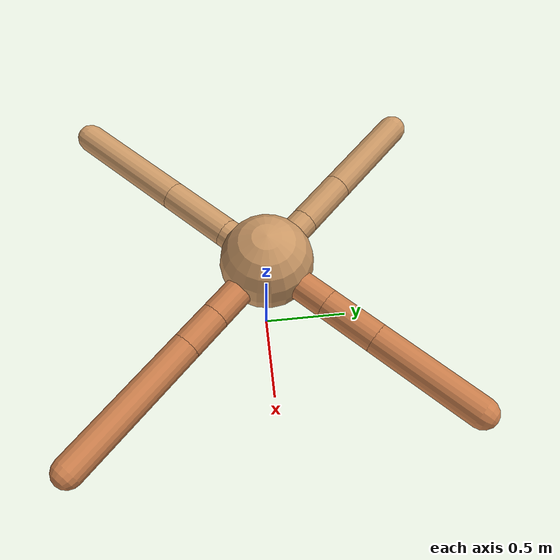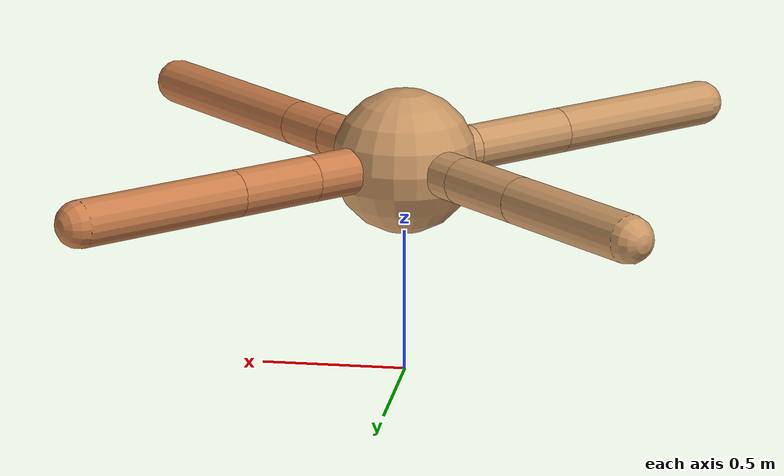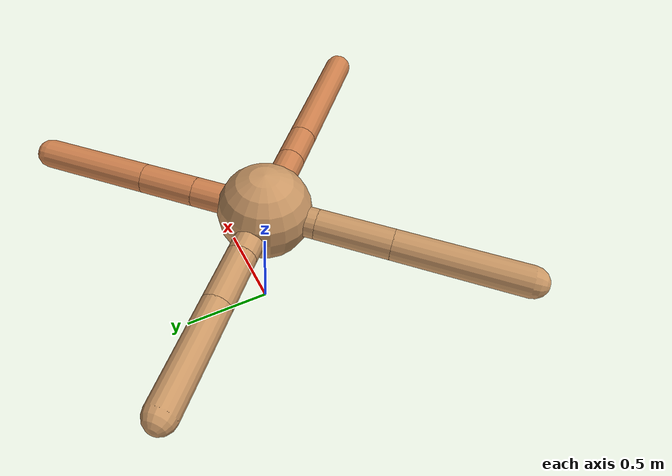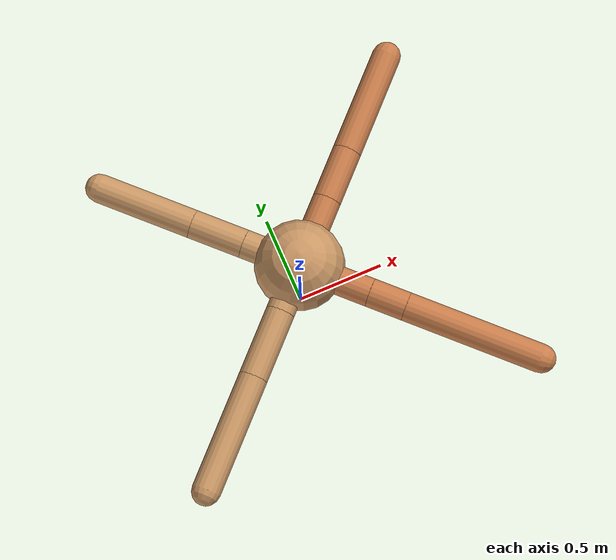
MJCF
<mujoco model="ant">
  <compiler angle="degree" coordinate="local" inertiafromgeom="true" />
  <option integrator="RK4" timestep="0.01" />
  <custom>
    <numeric data="0.0 0.0 0.55 1.0 0.0 0.0 0.0 0.0 1.0 0.0 -1.0 0.0 -1.0 0.0 1.0" name="init_qpos" />
  </custom>
  <default>
    <joint armature="1" damping="1" limited="true" />
    <geom conaffinity="0" condim="3" density="5.0" friction="1.5 0.1 0.1" margin="0.01" rgba="0.8 0.6 0.4 1" />
  </default>
  <worldbody>
    <body name="torso" pos="0 0 0.75">
      <geom name="torso_geom" pos="0 0 0" size="0.25" type="sphere" />

      <body name="front_left_leg" pos="0 0 0">
        <geom fromto="0.0 0.0 0.0 0.28096970651009523 0.28096970651009523 0.0" name="aux_1_geom" size="0.08" type="capsule" rgba=".8 .5 .3 1" />
        <body name="aux_1" pos="0.28096970651009523 0.28096970651009523 0.0">
          <joint axis="0 0 1" name="hip_1" pos="0.0 0.0 0.0" range="-40 40" type="hinge" />
          <geom fromto="0.0 0.0 0.0 0.2129304381275382 0.2129304381275382 0.0" name="left_leg_geom" size="0.08" type="capsule" rgba=".8 .5 .3 1" />
          <body pos="0.2129304381275382 0.2129304381275382 0.0" name="front_left_foot">
            <joint axis="-1 1 0" name="ankle_1" pos="0.0 0.0 0.0" range="30 100" type="hinge" />
            <geom fromto="0.0 0.0 0.0 0.42392827731381566 0.42392827731381566 0.0" name="left_ankle_geom" size="0.08" type="capsule" rgba=".8 .5 .3 1" />
          </body>
        </body>
      </body>
      <body name="front_right_leg" pos="0 0 0">
        <geom fromto="0.0 0.0 0.0 -0.23119941878769287 0.23119941878769287 0.0" name="aux_2_geom" size="0.08" type="capsule" />
        <body name="aux_2" pos="-0.23119941878769287 0.23119941878769287 0.0">
          <joint axis="0 0 1" name="hip_2" pos="0.0 0.0 0.0" range="-40 40" type="hinge" />
          <geom fromto="0.0 0.0 0.0 -0.2140722861741549 0.2140722861741549 0.0" name="right_leg_geom" size="0.08" type="capsule" />
          <body pos="-0.2140722861741549 0.2140722861741549 0.0" name="front_right_foot">
            <joint axis="1 1 0" name="ankle_2" pos="0.0 0.0 0.0" range="-100 -30" type="hinge" />
            <geom fromto="0.0 0.0 0.0 -0.3909747192425257 0.3909747192425257 0.0" name="right_ankle_geom" size="0.08" type="capsule" />
          </body>
        </body>
      </body>
      <body name="left_back_leg" pos="0 0 0">
        <geom fromto="0.0 0.0 0.0 -0.20067773560868707 -0.20067773560868707 0.0" name="aux_3_geom" size="0.08" type="capsule" />
        <body name="aux_3" pos="-0.20067773560868707 -0.20067773560868707 0.0">
          <joint axis="0 0 1" name="hip_3" pos="0.0 0.0 0.0" range="-40 40" type="hinge" />
          <geom fromto="0.0 0.0 0.0 -0.2757093363006425 -0.2757093363006425 0.0" name="back_leg_geom" size="0.08" type="capsule" />
          <body pos="-0.2757093363006425 -0.2757093363006425 0.0" name="left_back_foot">
            <joint axis="-1 1 0" name="ankle_3" pos="0.0 0.0 0.0" range="-100 -30" type="hinge" />
            <geom fromto="0.0 0.0 0.0 -0.4711491728988749 -0.4711491728988749 0.0" name="third_ankle_geom" size="0.08" type="capsule" />
          </body>
        </body>
      </body>
      <body name="right_back_leg" pos="0 0 0">
        <geom fromto="0.0 0.0 0.0 0.29241325158158354 -0.29241325158158354 0.0" name="aux_4_geom" size="0.08" type="capsule" rgba=".8 .5 .3 1" />
        <body name="aux_4" pos="0.29241325158158354 -0.29241325158158354 0.0">
          <joint axis="0 0 1" name="hip_4" pos="0.0 0.0 0.0" range="-40 40" type="hinge" />
          <geom fromto="0.0 0.0 0.0 0.14908780919886355 -0.14908780919886355 0.0" name="rightback_leg_geom" size="0.08" type="capsule" rgba=".8 .5 .3 1" />
          <body pos="0.14908780919886355 -0.14908780919886355 0.0" name="right_back_foot">
            <joint axis="1 1 0" name="ankle_4" pos="0.0 0.0 0.0" range="30 100" type="hinge" />
            <geom fromto="0.0 0.0 0.0 0.552650828353879 -0.552650828353879 0.0" name="fourth_ankle_geom" size="0.08" type="capsule" rgba=".8 .5 .3 1" />
          </body>
        </body>
      </body>
    </body>
  </worldbody>
  <actuator>
    <motor ctrllimited="true" ctrlrange="-1.0 1.0" joint="hip_4" gear="150" />
    <motor ctrllimited="true" ctrlrange="-1.0 1.0" joint="ankle_4" gear="150" />
    <motor ctrllimited="true" ctrlrange="-1.0 1.0" joint="hip_1" gear="150" />
    <motor ctrllimited="true" ctrlrange="-1.0 1.0" joint="ankle_1" gear="150" />
    <motor ctrllimited="true" ctrlrange="-1.0 1.0" joint="hip_2" gear="150" />
    <motor ctrllimited="true" ctrlrange="-1.0 1.0" joint="ankle_2" gear="150" />
    <motor ctrllimited="true" ctrlrange="-1.0 1.0" joint="hip_3" gear="150" />
    <motor ctrllimited="true" ctrlrange="-1.0 1.0" joint="ankle_3" gear="150" />
  </actuator>
</mujoco>
